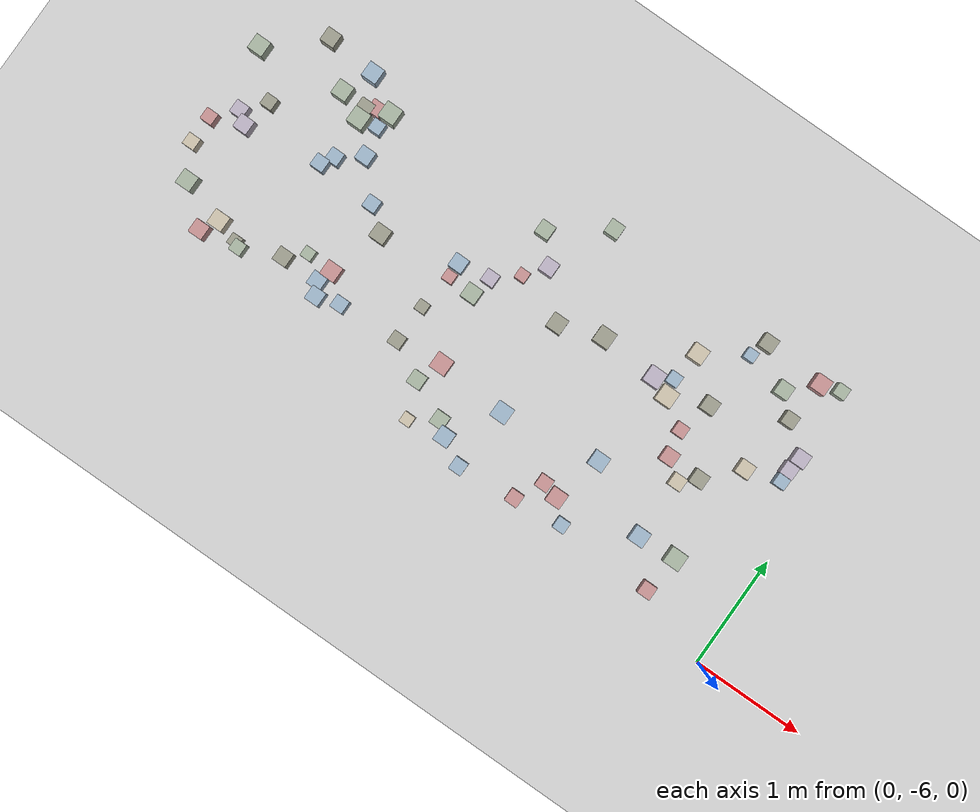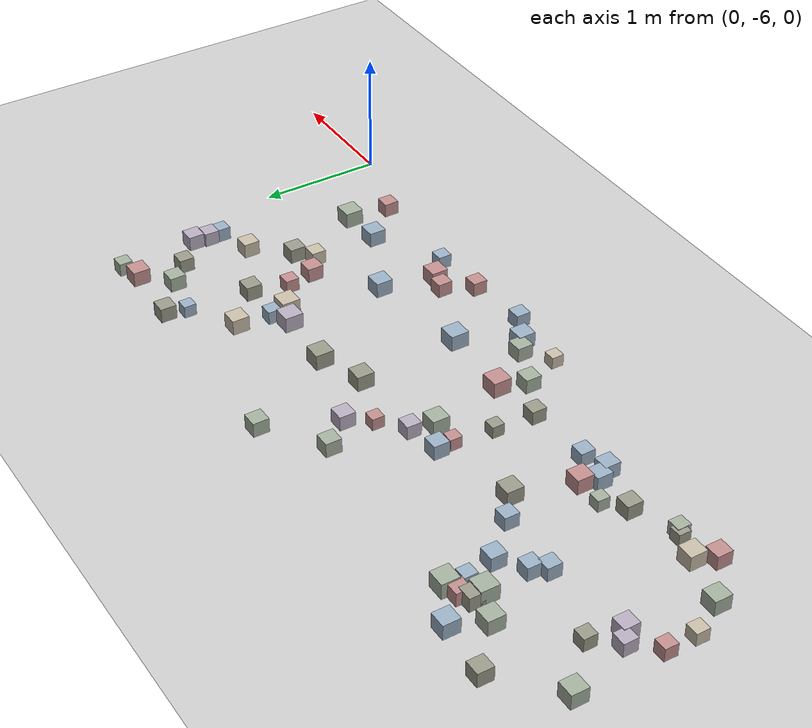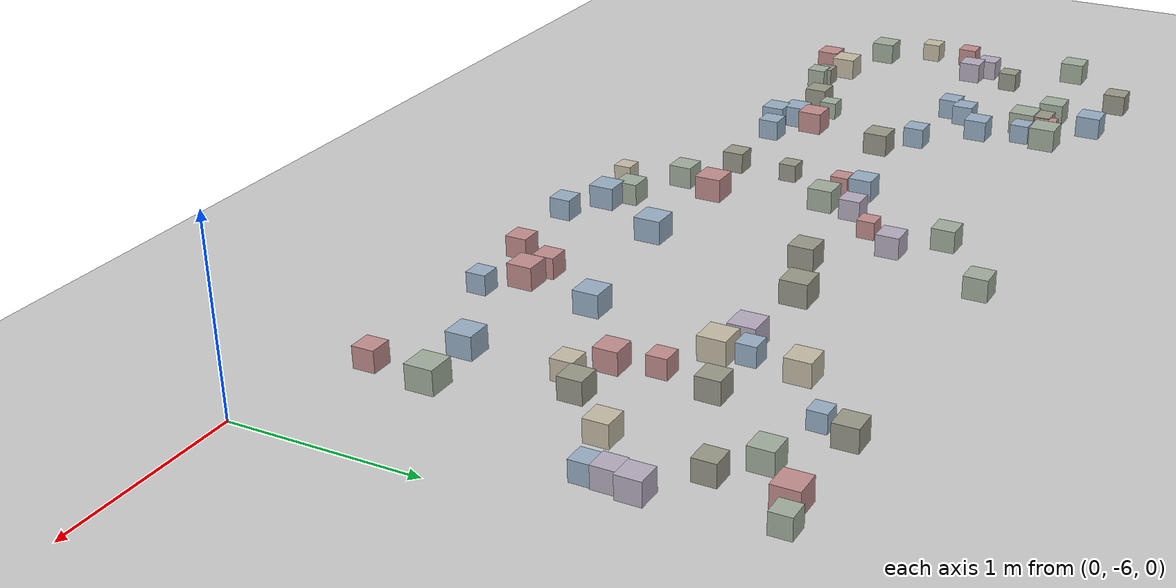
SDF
<sdf version="1.6">
 <world name="small_maze_world">
  <include><uri>model://ground_plane</uri></include>
  <include><uri>model://sun</uri></include>
  <model name="box_2">
   <static>false</static>
   <pose>-4.52 -5.1 0.05 0 0 0</pose>
   <link name="link">
    <inertial>
     <mass>0.2</mass>
     <inertia><ixx>0.001</ixx><iyy>0.001</iyy><izz>0.001</izz><ixy>0</ixy><ixz>0</ixz><iyz>0</iyz></inertia>
    </inertial>
    <collision name="collision"><geometry><box><size>0.1 0.1 0.1</size></box></geometry></collision>
    <visual name="visual">
     <geometry><box><size>0.1 0.1 0.1</size></box></geometry>
     <material><ambient>0.64 0.69 0.62 1</ambient><diffuse>0.64 0.69 0.62 1</diffuse></material>
    </visual>
   </link>
  </model>
  <model name="box_4">
   <static>false</static>
   <pose>-0.6 -4.49 0.05 0 0 0</pose>
   <link name="link">
    <inertial>
     <mass>0.2</mass>
     <inertia><ixx>0.001</ixx><iyy>0.001</iyy><izz>0.001</izz><ixy>0</ixy><ixz>0</ixz><iyz>0</iyz></inertia>
    </inertial>
    <collision name="collision"><geometry><box><size>0.13 0.13 0.13</size></box></geometry></collision>
    <visual name="visual">
     <geometry><box><size>0.13 0.13 0.13</size></box></geometry>
     <material><ambient>0.78 0.74 0.66 1</ambient><diffuse>0.78 0.74 0.66 1</diffuse></material>
    </visual>
   </link>
  </model>
  <model name="box_19">
   <static>false</static>
   <pose>-4.94 -3.59 0.05 0 0 0</pose>
   <link name="link">
    <inertial>
     <mass>0.2</mass>
     <inertia><ixx>0.001</ixx><iyy>0.001</iyy><izz>0.001</izz><ixy>0</ixy><ixz>0</ixz><iyz>0</iyz></inertia>
    </inertial>
    <collision name="collision"><geometry><box><size>0.14 0.14 0.14</size></box></geometry></collision>
    <visual name="visual">
     <geometry><box><size>0.14 0.14 0.14</size></box></geometry>
     <material><ambient>0.6 0.69 0.77 1</ambient><diffuse>0.6 0.69 0.77 1</diffuse></material>
    </visual>
   </link>
  </model>
  <model name="box_32">
   <static>false</static>
   <pose>-4.6 -4.18 0.05 0 0 0</pose>
   <link name="link">
    <inertial>
     <mass>0.2</mass>
     <inertia><ixx>0.001</ixx><iyy>0.001</iyy><izz>0.001</izz><ixy>0</ixy><ixz>0</ixz><iyz>0</iyz></inertia>
    </inertial>
    <collision name="collision"><geometry><box><size>0.13 0.13 0.13</size></box></geometry></collision>
    <visual name="visual">
     <geometry><box><size>0.13 0.13 0.13</size></box></geometry>
     <material><ambient>0.6 0.69 0.77 1</ambient><diffuse>0.6 0.69 0.77 1</diffuse></material>
    </visual>
   </link>
  </model>
  <model name="box_33">
   <static>false</static>
   <pose>-5.07 -5.36 0.05 0 0 0</pose>
   <link name="link">
    <inertial>
     <mass>0.2</mass>
     <inertia><ixx>0.001</ixx><iyy>0.001</iyy><izz>0.001</izz><ixy>0</ixy><ixz>0</ixz><iyz>0</iyz></inertia>
    </inertial>
    <collision name="collision"><geometry><box><size>0.1 0.1 0.1</size></box></geometry></collision>
    <visual name="visual">
     <geometry><box><size>0.1 0.1 0.1</size></box></geometry>
     <material><ambient>0.6 0.6 0.54 1</ambient><diffuse>0.6 0.6 0.54 1</diffuse></material>
    </visual>
   </link>
  </model>
  <model name="box_44">
   <static>false</static>
   <pose>-1.87 -5.52 0.05 0 0 0</pose>
   <link name="link">
    <inertial>
     <mass>0.2</mass>
     <inertia><ixx>0.001</ixx><iyy>0.001</iyy><izz>0.001</izz><ixy>0</ixy><ixz>0</ixz><iyz>0</iyz></inertia>
    </inertial>
    <collision name="collision"><geometry><box><size>0.12 0.12 0.12</size></box></geometry></collision>
    <visual name="visual">
     <geometry><box><size>0.12 0.12 0.12</size></box></geometry>
     <material><ambient>0.76 0.56 0.56 1</ambient><diffuse>0.76 0.56 0.56 1</diffuse></material>
    </visual>
   </link>
  </model>
  <model name="box_48">
   <static>false</static>
   <pose>-5.56 -4.54 0.05 0 0 0</pose>
   <link name="link">
    <inertial>
     <mass>0.2</mass>
     <inertia><ixx>0.001</ixx><iyy>0.001</iyy><izz>0.001</izz><ixy>0</ixy><ixz>0</ixz><iyz>0</iyz></inertia>
    </inertial>
    <collision name="collision"><geometry><box><size>0.13 0.13 0.13</size></box></geometry></collision>
    <visual name="visual">
     <geometry><box><size>0.13 0.13 0.13</size></box></geometry>
     <material><ambient>0.72 0.68 0.75 1</ambient><diffuse>0.72 0.68 0.75 1</diffuse></material>
    </visual>
   </link>
  </model>
  <model name="box_50">
   <static>false</static>
   <pose>-4.66 -3.93 0.05 0 0 0</pose>
   <link name="link">
    <inertial>
     <mass>0.2</mass>
     <inertia><ixx>0.001</ixx><iyy>0.001</iyy><izz>0.001</izz><ixy>0</ixy><ixz>0</ixz><iyz>0</iyz></inertia>
    </inertial>
    <collision name="collision"><geometry><box><size>0.11 0.11 0.11</size></box></geometry></collision>
    <visual name="visual">
     <geometry><box><size>0.11 0.11 0.11</size></box></geometry>
     <material><ambient>0.6 0.69 0.77 1</ambient><diffuse>0.6 0.69 0.77 1</diffuse></material>
    </visual>
   </link>
  </model>
  <model name="box_57">
   <static>false</static>
   <pose>-4.33 -4.47 0.05 0 0 0</pose>
   <link name="link">
    <inertial>
     <mass>0.2</mass>
     <inertia><ixx>0.001</ixx><iyy>0.001</iyy><izz>0.001</izz><ixy>0</ixy><ixz>0</ixz><iyz>0</iyz></inertia>
    </inertial>
    <collision name="collision"><geometry><box><size>0.12 0.12 0.12</size></box></geometry></collision>
    <visual name="visual">
     <geometry><box><size>0.12 0.12 0.12</size></box></geometry>
     <material><ambient>0.6 0.69 0.77 1</ambient><diffuse>0.6 0.69 0.77 1</diffuse></material>
    </visual>
   </link>
  </model>
  <model name="box_63">
   <static>false</static>
   <pose>-2.75 -5.68 0.05 0 0 0</pose>
   <link name="link">
    <inertial>
     <mass>0.2</mass>
     <inertia><ixx>0.001</ixx><iyy>0.001</iyy><izz>0.001</izz><ixy>0</ixy><ixz>0</ixz><iyz>0</iyz></inertia>
    </inertial>
    <collision name="collision"><geometry><box><size>0.14 0.14 0.14</size></box></geometry></collision>
    <visual name="visual">
     <geometry><box><size>0.14 0.14 0.14</size></box></geometry>
     <material><ambient>0.6 0.69 0.77 1</ambient><diffuse>0.6 0.69 0.77 1</diffuse></material>
    </visual>
   </link>
  </model>
  <model name="box_67">
   <static>false</static>
   <pose>-2.59 -3.5 0.05 0 0 0</pose>
   <link name="link">
    <inertial>
     <mass>0.2</mass>
     <inertia><ixx>0.001</ixx><iyy>0.001</iyy><izz>0.001</izz><ixy>0</ixy><ixz>0</ixz><iyz>0</iyz></inertia>
    </inertial>
    <collision name="collision"><geometry><box><size>0.13 0.13 0.13</size></box></geometry></collision>
    <visual name="visual">
     <geometry><box><size>0.13 0.13 0.13</size></box></geometry>
     <material><ambient>0.64 0.69 0.62 1</ambient><diffuse>0.64 0.69 0.62 1</diffuse></material>
    </visual>
   </link>
  </model>
  <model name="box_73">
   <static>false</static>
   <pose>-5.06 -3.85 0.05 0 0 0</pose>
   <link name="link">
    <inertial>
     <mass>0.2</mass>
     <inertia><ixx>0.001</ixx><iyy>0.001</iyy><izz>0.001</izz><ixy>0</ixy><ixz>0</ixz><iyz>0</iyz></inertia>
    </inertial>
    <collision name="collision"><geometry><box><size>0.14 0.14 0.14</size></box></geometry></collision>
    <visual name="visual">
     <geometry><box><size>0.14 0.14 0.14</size></box></geometry>
     <material><ambient>0.64 0.69 0.62 1</ambient><diffuse>0.64 0.69 0.62 1</diffuse></material>
    </visual>
   </link>
  </model>
  <model name="box_75">
   <static>false</static>
   <pose>-1.56 -5.72 0.05 0 0 0</pose>
   <link name="link">
    <inertial>
     <mass>0.2</mass>
     <inertia><ixx>0.001</ixx><iyy>0.001</iyy><izz>0.001</izz><ixy>0</ixy><ixz>0</ixz><iyz>0</iyz></inertia>
    </inertial>
    <collision name="collision"><geometry><box><size>0.11 0.11 0.11</size></box></geometry></collision>
    <visual name="visual">
     <geometry><box><size>0.11 0.11 0.11</size></box></geometry>
     <material><ambient>0.6 0.69 0.77 1</ambient><diffuse>0.6 0.69 0.77 1</diffuse></material>
    </visual>
   </link>
  </model>
  <model name="box_82">
   <static>false</static>
   <pose>-3.11 -5.21 0.05 0 0 0</pose>
   <link name="link">
    <inertial>
     <mass>0.2</mass>
     <inertia><ixx>0.001</ixx><iyy>0.001</iyy><izz>0.001</izz><ixy>0</ixy><ixz>0</ixz><iyz>0</iyz></inertia>
    </inertial>
    <collision name="collision"><geometry><box><size>0.15 0.15 0.15</size></box></geometry></collision>
    <visual name="visual">
     <geometry><box><size>0.15 0.15 0.15</size></box></geometry>
     <material><ambient>0.76 0.56 0.56 1</ambient><diffuse>0.76 0.56 0.56 1</diffuse></material>
    </visual>
   </link>
  </model>
  <model name="box_87">
   <static>false</static>
   <pose>-0.53 -3.95 0.05 0 0 0</pose>
   <link name="link">
    <inertial>
     <mass>0.2</mass>
     <inertia><ixx>0.001</ixx><iyy>0.001</iyy><izz>0.001</izz><ixy>0</ixy><ixz>0</ixz><iyz>0</iyz></inertia>
    </inertial>
    <collision name="collision"><geometry><box><size>0.12 0.12 0.12</size></box></geometry></collision>
    <visual name="visual">
     <geometry><box><size>0.12 0.12 0.12</size></box></geometry>
     <material><ambient>0.6 0.6 0.54 1</ambient><diffuse>0.6 0.6 0.54 1</diffuse></material>
    </visual>
   </link>
  </model>
  <model name="box_97">
   <static>false</static>
   <pose>-3.47 -4.59 0.05 0 0 0</pose>
   <link name="link">
    <inertial>
     <mass>0.2</mass>
     <inertia><ixx>0.001</ixx><iyy>0.001</iyy><izz>0.001</izz><ixy>0</ixy><ixz>0</ixz><iyz>0</iyz></inertia>
    </inertial>
    <collision name="collision"><geometry><box><size>0.1 0.1 0.1</size></box></geometry></collision>
    <visual name="visual">
     <geometry><box><size>0.1 0.1 0.1</size></box></geometry>
     <material><ambient>0.76 0.56 0.56 1</ambient><diffuse>0.76 0.56 0.56 1</diffuse></material>
    </visual>
   </link>
  </model>
  <model name="box_111">
   <static>false</static>
   <pose>-1.21 -4.53 0.05 0 0 0</pose>
   <link name="link">
    <inertial>
     <mass>0.2</mass>
     <inertia><ixx>0.001</ixx><iyy>0.001</iyy><izz>0.001</izz><ixy>0</ixy><ixz>0</ixz><iyz>0</iyz></inertia>
    </inertial>
    <collision name="collision"><geometry><box><size>0.11 0.11 0.11</size></box></geometry></collision>
    <visual name="visual">
     <geometry><box><size>0.11 0.11 0.11</size></box></geometry>
     <material><ambient>0.76 0.56 0.56 1</ambient><diffuse>0.76 0.56 0.56 1</diffuse></material>
    </visual>
   </link>
  </model>
  <model name="box_119">
   <static>false</static>
   <pose>-5.83 -3.94 0.05 0 0 0</pose>
   <link name="link">
    <inertial>
     <mass>0.2</mass>
     <inertia><ixx>0.001</ixx><iyy>0.001</iyy><izz>0.001</izz><ixy>0</ixy><ixz>0</ixz><iyz>0</iyz></inertia>
    </inertial>
    <collision name="collision"><geometry><box><size>0.14 0.14 0.14</size></box></geometry></collision>
    <visual name="visual">
     <geometry><box><size>0.14 0.14 0.14</size></box></geometry>
     <material><ambient>0.64 0.69 0.62 1</ambient><diffuse>0.64 0.69 0.62 1</diffuse></material>
    </visual>
   </link>
  </model>
  <model name="box_126">
   <static>false</static>
   <pose>-3.47 -4.46 0.05 0 0 0</pose>
   <link name="link">
    <inertial>
     <mass>0.2</mass>
     <inertia><ixx>0.001</ixx><iyy>0.001</iyy><izz>0.001</izz><ixy>0</ixy><ixz>0</ixz><iyz>0</iyz></inertia>
    </inertial>
    <collision name="collision"><geometry><box><size>0.13 0.13 0.13</size></box></geometry></collision>
    <visual name="visual">
     <geometry><box><size>0.13 0.13 0.13</size></box></geometry>
     <material><ambient>0.6 0.69 0.77 1</ambient><diffuse>0.6 0.69 0.77 1</diffuse></material>
    </visual>
   </link>
  </model>
  <model name="box_130">
   <static>false</static>
   <pose>-4.63 -3.78 0.05 0 0 0</pose>
   <link name="link">
    <inertial>
     <mass>0.2</mass>
     <inertia><ixx>0.001</ixx><iyy>0.001</iyy><izz>0.001</izz><ixy>0</ixy><ixz>0</ixz><iyz>0</iyz></inertia>
    </inertial>
    <collision name="collision"><geometry><box><size>0.15 0.15 0.15</size></box></geometry></collision>
    <visual name="visual">
     <geometry><box><size>0.15 0.15 0.15</size></box></geometry>
     <material><ambient>0.64 0.69 0.62 1</ambient><diffuse>0.64 0.69 0.62 1</diffuse></material>
    </visual>
   </link>
  </model>
  <model name="box_131">
   <static>false</static>
   <pose>-5.67 -5.18 0.05 0 0 0</pose>
   <link name="link">
    <inertial>
     <mass>0.2</mass>
     <inertia><ixx>0.001</ixx><iyy>0.001</iyy><izz>0.001</izz><ixy>0</ixy><ixz>0</ixz><iyz>0</iyz></inertia>
    </inertial>
    <collision name="collision"><geometry><box><size>0.14 0.14 0.14</size></box></geometry></collision>
    <visual name="visual">
     <geometry><box><size>0.14 0.14 0.14</size></box></geometry>
     <material><ambient>0.64 0.69 0.62 1</ambient><diffuse>0.64 0.69 0.62 1</diffuse></material>
    </visual>
   </link>
  </model>
  <model name="box_139">
   <static>false</static>
   <pose>-5.5 -4.27 0.05 0 0 0</pose>
   <link name="link">
    <inertial>
     <mass>0.2</mass>
     <inertia><ixx>0.001</ixx><iyy>0.001</iyy><izz>0.001</izz><ixy>0</ixy><ixz>0</ixz><iyz>0</iyz></inertia>
    </inertial>
    <collision name="collision"><geometry><box><size>0.11 0.11 0.11</size></box></geometry></collision>
    <visual name="visual">
     <geometry><box><size>0.11 0.11 0.11</size></box></geometry>
     <material><ambient>0.6 0.6 0.54 1</ambient><diffuse>0.6 0.6 0.54 1</diffuse></material>
    </visual>
   </link>
  </model>
  <model name="box_141">
   <static>false</static>
   <pose>-1.46 -4.37 0.05 0 0 0</pose>
   <link name="link">
    <inertial>
     <mass>0.2</mass>
     <inertia><ixx>0.001</ixx><iyy>0.001</iyy><izz>0.001</izz><ixy>0</ixy><ixz>0</ixz><iyz>0</iyz></inertia>
    </inertial>
    <collision name="collision"><geometry><box><size>0.15 0.15 0.15</size></box></geometry></collision>
    <visual name="visual">
     <geometry><box><size>0.15 0.15 0.15</size></box></geometry>
     <material><ambient>0.78 0.74 0.66 1</ambient><diffuse>0.78 0.74 0.66 1</diffuse></material>
    </visual>
   </link>
  </model>
  <model name="box_145">
   <static>false</static>
   <pose>-0.71 -3.78 0.05 0 0 0</pose>
   <link name="link">
    <inertial>
     <mass>0.2</mass>
     <inertia><ixx>0.001</ixx><iyy>0.001</iyy><izz>0.001</izz><ixy>0</ixy><ixz>0</ixz><iyz>0</iyz></inertia>
    </inertial>
    <collision name="collision"><geometry><box><size>0.13 0.13 0.13</size></box></geometry></collision>
    <visual name="visual">
     <geometry><box><size>0.13 0.13 0.13</size></box></geometry>
     <material><ambient>0.64 0.69 0.62 1</ambient><diffuse>0.64 0.69 0.62 1</diffuse></material>
    </visual>
   </link>
  </model>
  <model name="box_150">
   <static>false</static>
   <pose>-5.83 -4.9 0.05 0 0 0</pose>
   <link name="link">
    <inertial>
     <mass>0.2</mass>
     <inertia><ixx>0.001</ixx><iyy>0.001</iyy><izz>0.001</izz><ixy>0</ixy><ixz>0</ixz><iyz>0</iyz></inertia>
    </inertial>
    <collision name="collision"><geometry><box><size>0.11 0.11 0.11</size></box></geometry></collision>
    <visual name="visual">
     <geometry><box><size>0.11 0.11 0.11</size></box></geometry>
     <material><ambient>0.78 0.74 0.66 1</ambient><diffuse>0.78 0.74 0.66 1</diffuse></material>
    </visual>
   </link>
  </model>
  <model name="box_157">
   <static>false</static>
   <pose>-5.36 -5.45 0.05 0 0 0</pose>
   <link name="link">
    <inertial>
     <mass>0.2</mass>
     <inertia><ixx>0.001</ixx><iyy>0.001</iyy><izz>0.001</izz><ixy>0</ixy><ixz>0</ixz><iyz>0</iyz></inertia>
    </inertial>
    <collision name="collision"><geometry><box><size>0.13 0.13 0.13</size></box></geometry></collision>
    <visual name="visual">
     <geometry><box><size>0.13 0.13 0.13</size></box></geometry>
     <material><ambient>0.76 0.56 0.56 1</ambient><diffuse>0.76 0.56 0.56 1</diffuse></material>
    </visual>
   </link>
  </model>
  <model name="box_158">
   <static>false</static>
   <pose>-4.82 -3.96 0.05 0 0 0</pose>
   <link name="link">
    <inertial>
     <mass>0.2</mass>
     <inertia><ixx>0.001</ixx><iyy>0.001</iyy><izz>0.001</izz><ixy>0</ixy><ixz>0</ixz><iyz>0</iyz></inertia>
    </inertial>
    <collision name="collision"><geometry><box><size>0.15 0.15 0.15</size></box></geometry></collision>
    <visual name="visual">
     <geometry><box><size>0.15 0.15 0.15</size></box></geometry>
     <material><ambient>0.64 0.69 0.62 1</ambient><diffuse>0.64 0.69 0.62 1</diffuse></material>
    </visual>
   </link>
  </model>
  <model name="box_171">
   <static>false</static>
   <pose>-0.3 -4.29 0.05 0 0 0</pose>
   <link name="link">
    <inertial>
     <mass>0.2</mass>
     <inertia><ixx>0.001</ixx><iyy>0.001</iyy><izz>0.001</izz><ixy>0</ixy><ixz>0</ixz><iyz>0</iyz></inertia>
    </inertial>
    <collision name="collision"><geometry><box><size>0.12 0.12 0.12</size></box></geometry></collision>
    <visual name="visual">
     <geometry><box><size>0.12 0.12 0.12</size></box></geometry>
     <material><ambient>0.72 0.68 0.75 1</ambient><diffuse>0.72 0.68 0.75 1</diffuse></material>
    </visual>
   </link>
  </model>
  <model name="box_177">
   <static>false</static>
   <pose>-0.99 -5.43 0.05 0 0 0</pose>
   <link name="link">
    <inertial>
     <mass>0.2</mass>
     <inertia><ixx>0.001</ixx><iyy>0.001</iyy><izz>0.001</izz><ixy>0</ixy><ixz>0</ixz><iyz>0</iyz></inertia>
    </inertial>
    <collision name="collision"><geometry><box><size>0.14 0.14 0.14</size></box></geometry></collision>
    <visual name="visual">
     <geometry><box><size>0.14 0.14 0.14</size></box></geometry>
     <material><ambient>0.6 0.69 0.77 1</ambient><diffuse>0.6 0.69 0.77 1</diffuse></material>
    </visual>
   </link>
  </model>
  <model name="box_178">
   <static>false</static>
   <pose>-2.85 -4.06 0.05 0 0 0</pose>
   <link name="link">
    <inertial>
     <mass>0.2</mass>
     <inertia><ixx>0.001</ixx><iyy>0.001</iyy><izz>0.001</izz><ixy>0</ixy><ixz>0</ixz><iyz>0</iyz></inertia>
    </inertial>
    <collision name="collision"><geometry><box><size>0.13 0.13 0.13</size></box></geometry></collision>
    <visual name="visual">
     <geometry><box><size>0.13 0.13 0.13</size></box></geometry>
     <material><ambient>0.72 0.68 0.75 1</ambient><diffuse>0.72 0.68 0.75 1</diffuse></material>
    </visual>
   </link>
  </model>
  <model name="box_190">
   <static>false</static>
   <pose>-3.05 -3.83 0.05 0 0 0</pose>
   <link name="link">
    <inertial>
     <mass>0.2</mass>
     <inertia><ixx>0.001</ixx><iyy>0.001</iyy><izz>0.001</izz><ixy>0</ixy><ixz>0</ixz><iyz>0</iyz></inertia>
    </inertial>
    <collision name="collision"><geometry><box><size>0.13 0.13 0.13</size></box></geometry></collision>
    <visual name="visual">
     <geometry><box><size>0.13 0.13 0.13</size></box></geometry>
     <material><ambient>0.64 0.69 0.62 1</ambient><diffuse>0.64 0.69 0.62 1</diffuse></material>
    </visual>
   </link>
  </model>
  <model name="box_194">
   <static>false</static>
   <pose>-2.15 -4.27 0.05 0 0 0</pose>
   <link name="link">
    <inertial>
     <mass>0.2</mass>
     <inertia><ixx>0.001</ixx><iyy>0.001</iyy><izz>0.001</izz><ixy>0</ixy><ixz>0</ixz><iyz>0</iyz></inertia>
    </inertial>
    <collision name="collision"><geometry><box><size>0.15 0.15 0.15</size></box></geometry></collision>
    <visual name="visual">
     <geometry><box><size>0.15 0.15 0.15</size></box></geometry>
     <material><ambient>0.6 0.6 0.54 1</ambient><diffuse>0.6 0.6 0.54 1</diffuse></material>
    </visual>
   </link>
  </model>
  <model name="box_207">
   <static>false</static>
   <pose>-3.08 -5.74 0.05 0 0 0</pose>
   <link name="link">
    <inertial>
     <mass>0.2</mass>
     <inertia><ixx>0.001</ixx><iyy>0.001</iyy><izz>0.001</izz><ixy>0</ixy><ixz>0</ixz><iyz>0</iyz></inertia>
    </inertial>
    <collision name="collision"><geometry><box><size>0.1 0.1 0.1</size></box></geometry></collision>
    <visual name="visual">
     <geometry><box><size>0.1 0.1 0.1</size></box></geometry>
     <material><ambient>0.78 0.74 0.66 1</ambient><diffuse>0.78 0.74 0.66 1</diffuse></material>
    </visual>
   </link>
  </model>
  <model name="box_211">
   <static>false</static>
   <pose>-0.86 -4.77 0.05 0 0 0</pose>
   <link name="link">
    <inertial>
     <mass>0.2</mass>
     <inertia><ixx>0.001</ixx><iyy>0.001</iyy><izz>0.001</izz><ixy>0</ixy><ixz>0</ixz><iyz>0</iyz></inertia>
    </inertial>
    <collision name="collision"><geometry><box><size>0.13 0.13 0.13</size></box></geometry></collision>
    <visual name="visual">
     <geometry><box><size>0.13 0.13 0.13</size></box></geometry>
     <material><ambient>0.6 0.6 0.54 1</ambient><diffuse>0.6 0.6 0.54 1</diffuse></material>
    </visual>
   </link>
  </model>
  <model name="box_218">
   <static>false</static>
   <pose>-5.66 -4.46 0.05 0 0 0</pose>
   <link name="link">
    <inertial>
     <mass>0.2</mass>
     <inertia><ixx>0.001</ixx><iyy>0.001</iyy><izz>0.001</izz><ixy>0</ixy><ixz>0</ixz><iyz>0</iyz></inertia>
    </inertial>
    <collision name="collision"><geometry><box><size>0.12 0.12 0.12</size></box></geometry></collision>
    <visual name="visual">
     <geometry><box><size>0.12 0.12 0.12</size></box></geometry>
     <material><ambient>0.72 0.68 0.75 1</ambient><diffuse>0.72 0.68 0.75 1</diffuse></material>
    </visual>
   </link>
  </model>
  <model name="box_220">
   <static>false</static>
   <pose>-4.75 -3.81 0.05 0 0 0</pose>
   <link name="link">
    <inertial>
     <mass>0.2</mass>
     <inertia><ixx>0.001</ixx><iyy>0.001</iyy><izz>0.001</izz><ixy>0</ixy><ixz>0</ixz><iyz>0</iyz></inertia>
    </inertial>
    <collision name="collision"><geometry><box><size>0.12 0.12 0.12</size></box></geometry></collision>
    <visual name="visual">
     <geometry><box><size>0.12 0.12 0.12</size></box></geometry>
     <material><ambient>0.76 0.56 0.56 1</ambient><diffuse>0.76 0.56 0.56 1</diffuse></material>
    </visual>
   </link>
  </model>
  <model name="box_224">
   <static>false</static>
   <pose>-1.16 -4.76 0.05 0 0 0</pose>
   <link name="link">
    <inertial>
     <mass>0.2</mass>
     <inertia><ixx>0.001</ixx><iyy>0.001</iyy><izz>0.001</izz><ixy>0</ixy><ixz>0</ixz><iyz>0</iyz></inertia>
    </inertial>
    <collision name="collision"><geometry><box><size>0.13 0.13 0.13</size></box></geometry></collision>
    <visual name="visual">
     <geometry><box><size>0.13 0.13 0.13</size></box></geometry>
     <material><ambient>0.76 0.56 0.56 1</ambient><diffuse>0.76 0.56 0.56 1</diffuse></material>
    </visual>
   </link>
  </model>
  <model name="box_235">
   <static>false</static>
   <pose>-5.02 -5.39 0.05 0 0 0</pose>
   <link name="link">
    <inertial>
     <mass>0.2</mass>
     <inertia><ixx>0.001</ixx><iyy>0.001</iyy><izz>0.001</izz><ixy>0</ixy><ixz>0</ixz><iyz>0</iyz></inertia>
    </inertial>
    <collision name="collision"><geometry><box><size>0.11 0.11 0.11</size></box></geometry></collision>
    <visual name="visual">
     <geometry><box><size>0.11 0.11 0.11</size></box></geometry>
     <material><ambient>0.64 0.69 0.62 1</ambient><diffuse>0.64 0.69 0.62 1</diffuse></material>
    </visual>
   </link>
  </model>
  <model name="box_241">
   <static>false</static>
   <pose>-0.69 -5.75 0.05 0 0 0</pose>
   <link name="link">
    <inertial>
     <mass>0.2</mass>
     <inertia><ixx>0.001</ixx><iyy>0.001</iyy><izz>0.001</izz><ixy>0</ixy><ixz>0</ixz><iyz>0</iyz></inertia>
    </inertial>
    <collision name="collision"><geometry><box><size>0.12 0.12 0.12</size></box></geometry></collision>
    <visual name="visual">
     <geometry><box><size>0.12 0.12 0.12</size></box></geometry>
     <material><ambient>0.76 0.56 0.56 1</ambient><diffuse>0.76 0.56 0.56 1</diffuse></material>
    </visual>
   </link>
  </model>
  <model name="box_247">
   <static>false</static>
   <pose>-4.67 -5.24 0.05 0 0 0</pose>
   <link name="link">
    <inertial>
     <mass>0.2</mass>
     <inertia><ixx>0.001</ixx><iyy>0.001</iyy><izz>0.001</izz><ixy>0</ixy><ixz>0</ixz><iyz>0</iyz></inertia>
    </inertial>
    <collision name="collision"><geometry><box><size>0.13 0.13 0.13</size></box></geometry></collision>
    <visual name="visual">
     <geometry><box><size>0.13 0.13 0.13</size></box></geometry>
     <material><ambient>0.6 0.6 0.54 1</ambient><diffuse>0.6 0.6 0.54 1</diffuse></material>
    </visual>
   </link>
  </model>
  <model name="box_253">
   <static>false</static>
   <pose>-1.63 -4.3 0.05 0 0 0</pose>
   <link name="link">
    <inertial>
     <mass>0.2</mass>
     <inertia><ixx>0.001</ixx><iyy>0.001</iyy><izz>0.001</izz><ixy>0</ixy><ixz>0</ixz><iyz>0</iyz></inertia>
    </inertial>
    <collision name="collision"><geometry><box><size>0.15 0.15 0.15</size></box></geometry></collision>
    <visual name="visual">
     <geometry><box><size>0.15 0.15 0.15</size></box></geometry>
     <material><ambient>0.72 0.68 0.75 1</ambient><diffuse>0.72 0.68 0.75 1</diffuse></material>
    </visual>
   </link>
  </model>
  <model name="box_262">
   <static>false</static>
   <pose>-0.49 -3.57 0.05 0 0 0</pose>
   <link name="link">
    <inertial>
     <mass>0.2</mass>
     <inertia><ixx>0.001</ixx><iyy>0.001</iyy><izz>0.001</izz><ixy>0</ixy><ixz>0</ixz><iyz>0</iyz></inertia>
    </inertial>
    <collision name="collision"><geometry><box><size>0.14 0.14 0.14</size></box></geometry></collision>
    <visual name="visual">
     <geometry><box><size>0.14 0.14 0.14</size></box></geometry>
     <material><ambient>0.76 0.56 0.56 1</ambient><diffuse>0.76 0.56 0.56 1</diffuse></material>
    </visual>
   </link>
  </model>
  <model name="box_266">
   <static>false</static>
   <pose>-1.49 -4.22 0.05 0 0 0</pose>
   <link name="link">
    <inertial>
     <mass>0.2</mass>
     <inertia><ixx>0.001</ixx><iyy>0.001</iyy><izz>0.001</izz><ixy>0</ixy><ixz>0</ixz><iyz>0</iyz></inertia>
    </inertial>
    <collision name="collision"><geometry><box><size>0.11 0.11 0.11</size></box></geometry></collision>
    <visual name="visual">
     <geometry><box><size>0.11 0.11 0.11</size></box></geometry>
     <material><ambient>0.6 0.69 0.77 1</ambient><diffuse>0.6 0.69 0.77 1</diffuse></material>
    </visual>
   </link>
  </model>
  <model name="box_272">
   <static>false</static>
   <pose>-2.86 -5.59 0.05 0 0 0</pose>
   <link name="link">
    <inertial>
     <mass>0.2</mass>
     <inertia><ixx>0.001</ixx><iyy>0.001</iyy><izz>0.001</izz><ixy>0</ixy><ixz>0</ixz><iyz>0</iyz></inertia>
    </inertial>
    <collision name="collision"><geometry><box><size>0.13 0.13 0.13</size></box></geometry></collision>
    <visual name="visual">
     <geometry><box><size>0.13 0.13 0.13</size></box></geometry>
     <material><ambient>0.64 0.69 0.62 1</ambient><diffuse>0.64 0.69 0.62 1</diffuse></material>
    </visual>
   </link>
  </model>
  <model name="box_285">
   <static>false</static>
   <pose>-0.65 -5.41 0.05 0 0 0</pose>
   <link name="link">
    <inertial>
     <mass>0.2</mass>
     <inertia><ixx>0.001</ixx><iyy>0.001</iyy><izz>0.001</izz><ixy>0</ixy><ixz>0</ixz><iyz>0</iyz></inertia>
    </inertial>
    <collision name="collision"><geometry><box><size>0.15 0.15 0.15</size></box></geometry></collision>
    <visual name="visual">
     <geometry><box><size>0.15 0.15 0.15</size></box></geometry>
     <material><ambient>0.64 0.69 0.62 1</ambient><diffuse>0.64 0.69 0.62 1</diffuse></material>
    </visual>
   </link>
  </model>
  <model name="box_291">
   <static>false</static>
   <pose>-5.27 -5.3 0.05 0 0 0</pose>
   <link name="link">
    <inertial>
     <mass>0.2</mass>
     <inertia><ixx>0.001</ixx><iyy>0.001</iyy><izz>0.001</izz><ixy>0</ixy><ixz>0</ixz><iyz>0</iyz></inertia>
    </inertial>
    <collision name="collision"><geometry><box><size>0.14 0.14 0.14</size></box></geometry></collision>
    <visual name="visual">
     <geometry><box><size>0.14 0.14 0.14</size></box></geometry>
     <material><ambient>0.78 0.74 0.66 1</ambient><diffuse>0.78 0.74 0.66 1</diffuse></material>
    </visual>
   </link>
  </model>
  <model name="box_294">
   <static>false</static>
   <pose>-3.24 -4.6 0.05 0 0 0</pose>
   <link name="link">
    <inertial>
     <mass>0.2</mass>
     <inertia><ixx>0.001</ixx><iyy>0.001</iyy><izz>0.001</izz><ixy>0</ixy><ixz>0</ixz><iyz>0</iyz></inertia>
    </inertial>
    <collision name="collision"><geometry><box><size>0.14 0.14 0.14</size></box></geometry></collision>
    <visual name="visual">
     <geometry><box><size>0.14 0.14 0.14</size></box></geometry>
     <material><ambient>0.64 0.69 0.62 1</ambient><diffuse>0.64 0.69 0.62 1</diffuse></material>
    </visual>
   </link>
  </model>
  <model name="box_297">
   <static>false</static>
   <pose>-1.61 -5.12 0.05 0 0 0</pose>
   <link name="link">
    <inertial>
     <mass>0.2</mass>
     <inertia><ixx>0.001</ixx><iyy>0.001</iyy><izz>0.001</izz><ixy>0</ixy><ixz>0</ixz><iyz>0</iyz></inertia>
    </inertial>
    <collision name="collision"><geometry><box><size>0.14 0.14 0.14</size></box></geometry></collision>
    <visual name="visual">
     <geometry><box><size>0.14 0.14 0.14</size></box></geometry>
     <material><ambient>0.6 0.69 0.77 1</ambient><diffuse>0.6 0.69 0.77 1</diffuse></material>
    </visual>
   </link>
  </model>
  <model name="box_299">
   <static>false</static>
   <pose>-3.2 -5.43 0.05 0 0 0</pose>
   <link name="link">
    <inertial>
     <mass>0.2</mass>
     <inertia><ixx>0.001</ixx><iyy>0.001</iyy><izz>0.001</izz><ixy>0</ixy><ixz>0</ixz><iyz>0</iyz></inertia>
    </inertial>
    <collision name="collision"><geometry><box><size>0.13 0.13 0.13</size></box></geometry></collision>
    <visual name="visual">
     <geometry><box><size>0.13 0.13 0.13</size></box></geometry>
     <material><ambient>0.64 0.69 0.62 1</ambient><diffuse>0.64 0.69 0.62 1</diffuse></material>
    </visual>
   </link>
  </model>
  <model name="box_304">
   <static>false</static>
   <pose>-0.28 -4.16 0.05 0 0 0</pose>
   <link name="link">
    <inertial>
     <mass>0.2</mass>
     <inertia><ixx>0.001</ixx><iyy>0.001</iyy><izz>0.001</izz><ixy>0</ixy><ixz>0</ixz><iyz>0</iyz></inertia>
    </inertial>
    <collision name="collision"><geometry><box><size>0.13 0.13 0.13</size></box></geometry></collision>
    <visual name="visual">
     <geometry><box><size>0.13 0.13 0.13</size></box></geometry>
     <material><ambient>0.72 0.68 0.75 1</ambient><diffuse>0.72 0.68 0.75 1</diffuse></material>
    </visual>
   </link>
  </model>
  <model name="box_305">
   <static>false</static>
   <pose>-2.52 -5.81 0.05 0 0 0</pose>
   <link name="link">
    <inertial>
     <mass>0.2</mass>
     <inertia><ixx>0.001</ixx><iyy>0.001</iyy><izz>0.001</izz><ixy>0</ixy><ixz>0</ixz><iyz>0</iyz></inertia>
    </inertial>
    <collision name="collision"><geometry><box><size>0.12 0.12 0.12</size></box></geometry></collision>
    <visual name="visual">
     <geometry><box><size>0.12 0.12 0.12</size></box></geometry>
     <material><ambient>0.6 0.69 0.77 1</ambient><diffuse>0.6 0.69 0.77 1</diffuse></material>
    </visual>
   </link>
  </model>
  <model name="box_306">
   <static>false</static>
   <pose>-3.19 -4.41 0.05 0 0 0</pose>
   <link name="link">
    <inertial>
     <mass>0.2</mass>
     <inertia><ixx>0.001</ixx><iyy>0.001</iyy><izz>0.001</izz><ixy>0</ixy><ixz>0</ixz><iyz>0</iyz></inertia>
    </inertial>
    <collision name="collision"><geometry><box><size>0.12 0.12 0.12</size></box></geometry></collision>
    <visual name="visual">
     <geometry><box><size>0.12 0.12 0.12</size></box></geometry>
     <material><ambient>0.72 0.68 0.75 1</ambient><diffuse>0.72 0.68 0.75 1</diffuse></material>
    </visual>
   </link>
  </model>
  <model name="box_308">
   <static>false</static>
   <pose>-1.03 -3.54 0.05 0 0 0</pose>
   <link name="link">
    <inertial>
     <mass>0.2</mass>
     <inertia><ixx>0.001</ixx><iyy>0.001</iyy><izz>0.001</izz><ixy>0</ixy><ixz>0</ixz><iyz>0</iyz></inertia>
    </inertial>
    <collision name="collision"><geometry><box><size>0.13 0.13 0.13</size></box></geometry></collision>
    <visual name="visual">
     <geometry><box><size>0.13 0.13 0.13</size></box></geometry>
     <material><ambient>0.6 0.6 0.54 1</ambient><diffuse>0.6 0.6 0.54 1</diffuse></material>
    </visual>
   </link>
  </model>
  <model name="box_311">
   <static>false</static>
   <pose>-0.32 -3.52 0.05 0 0 0</pose>
   <link name="link">
    <inertial>
     <mass>0.2</mass>
     <inertia><ixx>0.001</ixx><iyy>0.001</iyy><izz>0.001</izz><ixy>0</ixy><ixz>0</ixz><iyz>0</iyz></inertia>
    </inertial>
    <collision name="collision"><geometry><box><size>0.11 0.11 0.11</size></box></geometry></collision>
    <visual name="visual">
     <geometry><box><size>0.11 0.11 0.11</size></box></geometry>
     <material><ambient>0.64 0.69 0.62 1</ambient><diffuse>0.64 0.69 0.62 1</diffuse></material>
    </visual>
   </link>
  </model>
  <model name="box_312">
   <static>false</static>
   <pose>-1.13 -4.23 0.05 0 0 0</pose>
   <link name="link">
    <inertial>
     <mass>0.2</mass>
     <inertia><ixx>0.001</ixx><iyy>0.001</iyy><izz>0.001</izz><ixy>0</ixy><ixz>0</ixz><iyz>0</iyz></inertia>
    </inertial>
    <collision name="collision"><geometry><box><size>0.13 0.13 0.13</size></box></geometry></collision>
    <visual name="visual">
     <geometry><box><size>0.13 0.13 0.13</size></box></geometry>
     <material><ambient>0.6 0.6 0.54 1</ambient><diffuse>0.6 0.6 0.54 1</diffuse></material>
    </visual>
   </link>
  </model>
  <model name="box_315">
   <static>false</static>
   <pose>-1.09 -3.7 0.05 0 0 0</pose>
   <link name="link">
    <inertial>
     <mass>0.2</mass>
     <inertia><ixx>0.001</ixx><iyy>0.001</iyy><izz>0.001</izz><ixy>0</ixy><ixz>0</ixz><iyz>0</iyz></inertia>
    </inertial>
    <collision name="collision"><geometry><box><size>0.1 0.1 0.1</size></box></geometry></collision>
    <visual name="visual">
     <geometry><box><size>0.1 0.1 0.1</size></box></geometry>
     <material><ambient>0.6 0.69 0.77 1</ambient><diffuse>0.6 0.69 0.77 1</diffuse></material>
    </visual>
   </link>
  </model>
  <model name="box_317">
   <static>false</static>
   <pose>-4.8 -4.33 0.05 0 0 0</pose>
   <link name="link">
    <inertial>
     <mass>0.2</mass>
     <inertia><ixx>0.001</ixx><iyy>0.001</iyy><izz>0.001</izz><ixy>0</ixy><ixz>0</ixz><iyz>0</iyz></inertia>
    </inertial>
    <collision name="collision"><geometry><box><size>0.12 0.12 0.12</size></box></geometry></collision>
    <visual name="visual">
     <geometry><box><size>0.12 0.12 0.12</size></box></geometry>
     <material><ambient>0.6 0.69 0.77 1</ambient><diffuse>0.6 0.69 0.77 1</diffuse></material>
    </visual>
   </link>
  </model>
  <model name="box_327">
   <static>false</static>
   <pose>-0.3 -4.4 0.05 0 0 0</pose>
   <link name="link">
    <inertial>
     <mass>0.2</mass>
     <inertia><ixx>0.001</ixx><iyy>0.001</iyy><izz>0.001</izz><ixy>0</ixy><ixz>0</ixz><iyz>0</iyz></inertia>
    </inertial>
    <collision name="collision"><geometry><box><size>0.11 0.11 0.11</size></box></geometry></collision>
    <visual name="visual">
     <geometry><box><size>0.11 0.11 0.11</size></box></geometry>
     <material><ambient>0.6 0.69 0.77 1</ambient><diffuse>0.6 0.69 0.77 1</diffuse></material>
    </visual>
   </link>
  </model>
  <model name="box_339">
   <static>false</static>
   <pose>-4.13 -4.63 0.05 0 0 0</pose>
   <link name="link">
    <inertial>
     <mass>0.2</mass>
     <inertia><ixx>0.001</ixx><iyy>0.001</iyy><izz>0.001</izz><ixy>0</ixy><ixz>0</ixz><iyz>0</iyz></inertia>
    </inertial>
    <collision name="collision"><geometry><box><size>0.14 0.14 0.14</size></box></geometry></collision>
    <visual name="visual">
     <geometry><box><size>0.14 0.14 0.14</size></box></geometry>
     <material><ambient>0.6 0.6 0.54 1</ambient><diffuse>0.6 0.6 0.54 1</diffuse></material>
    </visual>
   </link>
  </model>
  <model name="box_342">
   <static>false</static>
   <pose>-4.33 -5.24 0.05 0 0 0</pose>
   <link name="link">
    <inertial>
     <mass>0.2</mass>
     <inertia><ixx>0.001</ixx><iyy>0.001</iyy><izz>0.001</izz><ixy>0</ixy><ixz>0</ixz><iyz>0</iyz></inertia>
    </inertial>
    <collision name="collision"><geometry><box><size>0.13 0.13 0.13</size></box></geometry></collision>
    <visual name="visual">
     <geometry><box><size>0.13 0.13 0.13</size></box></geometry>
     <material><ambient>0.6 0.69 0.77 1</ambient><diffuse>0.6 0.69 0.77 1</diffuse></material>
    </visual>
   </link>
  </model>
  <model name="box_349">
   <static>false</static>
   <pose>-1.45 -3.94 0.05 0 0 0</pose>
   <link name="link">
    <inertial>
     <mass>0.2</mass>
     <inertia><ixx>0.001</ixx><iyy>0.001</iyy><izz>0.001</izz><ixy>0</ixy><ixz>0</ixz><iyz>0</iyz></inertia>
    </inertial>
    <collision name="collision"><geometry><box><size>0.14 0.14 0.14</size></box></geometry></collision>
    <visual name="visual">
     <geometry><box><size>0.14 0.14 0.14</size></box></geometry>
     <material><ambient>0.78 0.74 0.66 1</ambient><diffuse>0.78 0.74 0.66 1</diffuse></material>
    </visual>
   </link>
  </model>
  <model name="box_355">
   <static>false</static>
   <pose>-5.83 -4.65 0.05 0 0 0</pose>
   <link name="link">
    <inertial>
     <mass>0.2</mass>
     <inertia><ixx>0.001</ixx><iyy>0.001</iyy><izz>0.001</izz><ixy>0</ixy><ixz>0</ixz><iyz>0</iyz></inertia>
    </inertial>
    <collision name="collision"><geometry><box><size>0.11 0.11 0.11</size></box></geometry></collision>
    <visual name="visual">
     <geometry><box><size>0.11 0.11 0.11</size></box></geometry>
     <material><ambient>0.76 0.56 0.56 1</ambient><diffuse>0.76 0.56 0.56 1</diffuse></material>
    </visual>
   </link>
  </model>
  <model name="box_367">
   <static>false</static>
   <pose>-2.0 -5.76 0.05 0 0 0</pose>
   <link name="link">
    <inertial>
     <mass>0.2</mass>
     <inertia><ixx>0.001</ixx><iyy>0.001</iyy><izz>0.001</izz><ixy>0</ixy><ixz>0</ixz><iyz>0</iyz></inertia>
    </inertial>
    <collision name="collision"><geometry><box><size>0.12 0.12 0.12</size></box></geometry></collision>
    <visual name="visual">
     <geometry><box><size>0.12 0.12 0.12</size></box></geometry>
     <material><ambient>0.76 0.56 0.56 1</ambient><diffuse>0.76 0.56 0.56 1</diffuse></material>
    </visual>
   </link>
  </model>
  <model name="box_368">
   <static>false</static>
   <pose>-1.72 -5.56 0.05 0 0 0</pose>
   <link name="link">
    <inertial>
     <mass>0.2</mass>
     <inertia><ixx>0.001</ixx><iyy>0.001</iyy><izz>0.001</izz><ixy>0</ixy><ixz>0</ixz><iyz>0</iyz></inertia>
    </inertial>
    <collision name="collision"><geometry><box><size>0.14 0.14 0.14</size></box></geometry></collision>
    <visual name="visual">
     <geometry><box><size>0.14 0.14 0.14</size></box></geometry>
     <material><ambient>0.76 0.56 0.56 1</ambient><diffuse>0.76 0.56 0.56 1</diffuse></material>
    </visual>
   </link>
  </model>
  <model name="box_371">
   <static>false</static>
   <pose>-2.99 -4.24 0.05 0 0 0</pose>
   <link name="link">
    <inertial>
     <mass>0.2</mass>
     <inertia><ixx>0.001</ixx><iyy>0.001</iyy><izz>0.001</izz><ixy>0</ixy><ixz>0</ixz><iyz>0</iyz></inertia>
    </inertial>
    <collision name="collision"><geometry><box><size>0.1 0.1 0.1</size></box></geometry></collision>
    <visual name="visual">
     <geometry><box><size>0.1 0.1 0.1</size></box></geometry>
     <material><ambient>0.76 0.56 0.56 1</ambient><diffuse>0.76 0.56 0.56 1</diffuse></material>
    </visual>
   </link>
  </model>
  <model name="box_377">
   <static>false</static>
   <pose>-5.39 -3.55 0.05 0 0 0</pose>
   <link name="link">
    <inertial>
     <mass>0.2</mass>
     <inertia><ixx>0.001</ixx><iyy>0.001</iyy><izz>0.001</izz><ixy>0</ixy><ixz>0</ixz><iyz>0</iyz></inertia>
    </inertial>
    <collision name="collision"><geometry><box><size>0.13 0.13 0.13</size></box></geometry></collision>
    <visual name="visual">
     <geometry><box><size>0.13 0.13 0.13</size></box></geometry>
     <material><ambient>0.6 0.6 0.54 1</ambient><diffuse>0.6 0.6 0.54 1</diffuse></material>
    </visual>
   </link>
  </model>
  <model name="box_380">
   <static>false</static>
   <pose>-4.28 -5.11 0.05 0 0 0</pose>
   <link name="link">
    <inertial>
     <mass>0.2</mass>
     <inertia><ixx>0.001</ixx><iyy>0.001</iyy><izz>0.001</izz><ixy>0</ixy><ixz>0</ixz><iyz>0</iyz></inertia>
    </inertial>
    <collision name="collision"><geometry><box><size>0.14 0.14 0.14</size></box></geometry></collision>
    <visual name="visual">
     <geometry><box><size>0.14 0.14 0.14</size></box></geometry>
     <material><ambient>0.76 0.56 0.56 1</ambient><diffuse>0.76 0.56 0.56 1</diffuse></material>
    </visual>
   </link>
  </model>
  <model name="box_385">
   <static>false</static>
   <pose>-4.87 -4.44 0.05 0 0 0</pose>
   <link name="link">
    <inertial>
     <mass>0.2</mass>
     <inertia><ixx>0.001</ixx><iyy>0.001</iyy><izz>0.001</izz><ixy>0</ixy><ixz>0</ixz><iyz>0</iyz></inertia>
    </inertial>
    <collision name="collision"><geometry><box><size>0.12 0.12 0.12</size></box></geometry></collision>
    <visual name="visual">
     <geometry><box><size>0.12 0.12 0.12</size></box></geometry>
     <material><ambient>0.6 0.69 0.77 1</ambient><diffuse>0.6 0.69 0.77 1</diffuse></material>
    </visual>
   </link>
  </model>
  <model name="box_407">
   <static>false</static>
   <pose>-4.83 -3.86 0.05 0 0 0</pose>
   <link name="link">
    <inertial>
     <mass>0.2</mass>
     <inertia><ixx>0.001</ixx><iyy>0.001</iyy><izz>0.001</izz><ixy>0</ixy><ixz>0</ixz><iyz>0</iyz></inertia>
    </inertial>
    <collision name="collision"><geometry><box><size>0.13 0.13 0.13</size></box></geometry></collision>
    <visual name="visual">
     <geometry><box><size>0.13 0.13 0.13</size></box></geometry>
     <material><ambient>0.6 0.6 0.54 1</ambient><diffuse>0.6 0.6 0.54 1</diffuse></material>
    </visual>
   </link>
  </model>
  <model name="box_412">
   <static>false</static>
   <pose>-2.53 -4.4 0.05 0 0 0</pose>
   <link name="link">
    <inertial>
     <mass>0.2</mass>
     <inertia><ixx>0.001</ixx><iyy>0.001</iyy><izz>0.001</izz><ixy>0</ixy><ixz>0</ixz><iyz>0</iyz></inertia>
    </inertial>
    <collision name="collision"><geometry><box><size>0.14 0.14 0.14</size></box></geometry></collision>
    <visual name="visual">
     <geometry><box><size>0.14 0.14 0.14</size></box></geometry>
     <material><ambient>0.6 0.6 0.54 1</ambient><diffuse>0.6 0.6 0.54 1</diffuse></material>
    </visual>
   </link>
  </model>
  <model name="box_413">
   <static>false</static>
   <pose>-3.51 -4.92 0.05 0 0 0</pose>
   <link name="link">
    <inertial>
     <mass>0.2</mass>
     <inertia><ixx>0.001</ixx><iyy>0.001</iyy><izz>0.001</izz><ixy>0</ixy><ixz>0</ixz><iyz>0</iyz></inertia>
    </inertial>
    <collision name="collision"><geometry><box><size>0.1 0.1 0.1</size></box></geometry></collision>
    <visual name="visual">
     <geometry><box><size>0.1 0.1 0.1</size></box></geometry>
     <material><ambient>0.6 0.6 0.54 1</ambient><diffuse>0.6 0.6 0.54 1</diffuse></material>
    </visual>
   </link>
  </model>
  <model name="box_415">
   <static>false</static>
   <pose>-3.52 -5.26 0.05 0 0 0</pose>
   <link name="link">
    <inertial>
     <mass>0.2</mass>
     <inertia><ixx>0.001</ixx><iyy>0.001</iyy><izz>0.001</izz><ixy>0</ixy><ixz>0</ixz><iyz>0</iyz></inertia>
    </inertial>
    <collision name="collision"><geometry><box><size>0.12 0.12 0.12</size></box></geometry></collision>
    <visual name="visual">
     <geometry><box><size>0.12 0.12 0.12</size></box></geometry>
     <material><ambient>0.6 0.6 0.54 1</ambient><diffuse>0.6 0.6 0.54 1</diffuse></material>
    </visual>
   </link>
  </model>
  <model name="box_422">
   <static>false</static>
   <pose>-0.99 -4.89 0.05 0 0 0</pose>
   <link name="link">
    <inertial>
     <mass>0.2</mass>
     <inertia><ixx>0.001</ixx><iyy>0.001</iyy><izz>0.001</izz><ixy>0</ixy><ixz>0</ixz><iyz>0</iyz></inertia>
    </inertial>
    <collision name="collision"><geometry><box><size>0.12 0.12 0.12</size></box></geometry></collision>
    <visual name="visual">
     <geometry><box><size>0.12 0.12 0.12</size></box></geometry>
     <material><ambient>0.78 0.74 0.66 1</ambient><diffuse>0.78 0.74 0.66 1</diffuse></material>
    </visual>
   </link>
  </model>
  <model name="box_427">
   <static>false</static>
   <pose>-4.27 -5.35 0.05 0 0 0</pose>
   <link name="link">
    <inertial>
     <mass>0.2</mass>
     <inertia><ixx>0.001</ixx><iyy>0.001</iyy><izz>0.001</izz><ixy>0</ixy><ixz>0</ixz><iyz>0</iyz></inertia>
    </inertial>
    <collision name="collision"><geometry><box><size>0.13 0.13 0.13</size></box></geometry></collision>
    <visual name="visual">
     <geometry><box><size>0.13 0.13 0.13</size></box></geometry>
     <material><ambient>0.6 0.69 0.77 1</ambient><diffuse>0.6 0.69 0.77 1</diffuse></material>
    </visual>
   </link>
  </model>
  <model name="box_430">
   <static>false</static>
   <pose>-4.07 -5.29 0.05 0 0 0</pose>
   <link name="link">
    <inertial>
     <mass>0.2</mass>
     <inertia><ixx>0.001</ixx><iyy>0.001</iyy><izz>0.001</izz><ixy>0</ixy><ixz>0</ixz><iyz>0</iyz></inertia>
    </inertial>
    <collision name="collision"><geometry><box><size>0.12 0.12 0.12</size></box></geometry></collision>
    <visual name="visual">
     <geometry><box><size>0.12 0.12 0.12</size></box></geometry>
     <material><ambient>0.6 0.69 0.77 1</ambient><diffuse>0.6 0.69 0.77 1</diffuse></material>
    </visual>
   </link>
  </model>
  <model name="box_447">
   <static>false</static>
   <pose>-2.48 -5.25 0.05 0 0 0</pose>
   <link name="link">
    <inertial>
     <mass>0.2</mass>
     <inertia><ixx>0.001</ixx><iyy>0.001</iyy><izz>0.001</izz><ixy>0</ixy><ixz>0</ixz><iyz>0</iyz></inertia>
    </inertial>
    <collision name="collision"><geometry><box><size>0.15 0.15 0.15</size></box></geometry></collision>
    <visual name="visual">
     <geometry><box><size>0.15 0.15 0.15</size></box></geometry>
     <material><ambient>0.6 0.69 0.77 1</ambient><diffuse>0.6 0.69 0.77 1</diffuse></material>
    </visual>
   </link>
  </model>
 </world>
</sdf>
